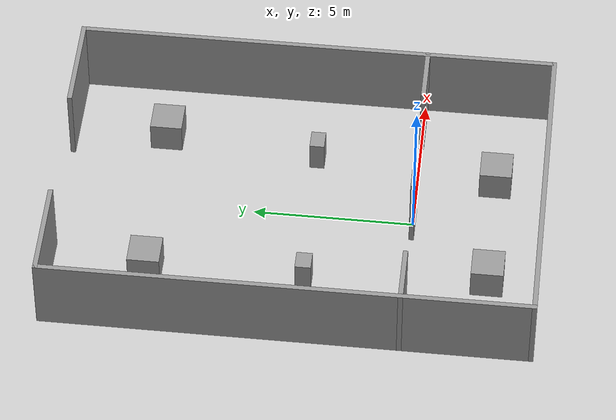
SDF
<sdf version="1.7">
 <world name="default">
  <light name="sun" type="directional">
   <pose>0 0 10 0 -0 0</pose>
   <diffuse>0.8 0.8 0.8 1</diffuse>
   <specular>0.2 0.2 0.2 1</specular>
   <attenuation>
    <range>1000</range>
    <constant>0.9</constant>
    <linear>0.01</linear>
    <quadratic>0.001</quadratic>
   </attenuation>
   <direction>-0.5 0.1 -0.9</direction>
   <spot><inner_angle>0</inner_angle><outer_angle>0</outer_angle><falloff>0</falloff></spot>
  </light>
  <model name="ground_plane">
   <static>1</static>
   <link name="link">
    <collision name="collision">
     <geometry><plane><normal>0 0 1</normal><size>100 100</size></plane></geometry>
     <surface>
      <contact><collide_bitmask>65535</collide_bitmask></contact>
      <friction><ode><mu>100</mu><mu2>50</mu2></ode></friction>
     </surface>
    </collision>
    <visual name="visual">
     <cast_shadows>0</cast_shadows>
     <geometry><plane><normal>0 0 1</normal><size>100 100</size></plane></geometry>
     <material>
      <script><uri>file://media/materials/scripts/gazebo.material</uri><name>Gazebo/Grey</name></script>
     </material>
    </visual>
   </link>
  </model>
  <gravity>0 0 -9.8</gravity>
  <magnetic_field>6e-06 2.3e-05 -4.2e-05</magnetic_field>
  <atmosphere type="adiabatic"/>
  <physics name="default_physics" default="0" type="ode">
   <max_step_size>0.001</max_step_size>
   <real_time_factor>1</real_time_factor>
   <real_time_update_rate>1000</real_time_update_rate>
  </physics>
  <scene><ambient>0.4 0.4 0.4 1</ambient><background>0.7 0.7 0.7 1</background><shadows>1</shadows></scene>
  <audio><device>default</device></audio>
  <spherical_coordinates>
   <surface_model>EARTH_WGS84</surface_model>
   <latitude_deg>0</latitude_deg>
   <longitude_deg>0</longitude_deg>
   <elevation>0</elevation>
   <heading_deg>0</heading_deg>
  </spherical_coordinates>
  <model name="unit_box">
   <pose>2.86632 8.06138 0.499995 1e-05 -0 0</pose>
   <link name="link">
    <inertial>
     <mass>1</mass>
     <inertia>
      <ixx>0.166667</ixx>
      <ixy>0</ixy>
      <ixz>0</ixz>
      <iyy>0.166667</iyy>
      <iyz>0</iyz>
      <izz>0.166667</izz>
     </inertia>
    </inertial>
    <collision name="collision"><geometry><box><size>1 1 1</size></box></geometry></collision>
    <visual name="visual">
     <geometry><box><size>1 1 1</size></box></geometry>
     <material>
      <script><name>Gazebo/Grey</name><uri>file://media/materials/scripts/gazebo.material</uri></script>
     </material>
    </visual>
   </link>
  </model>
  <model name="unit_box_0">
   <pose>-2.69584 8.04153 0.499995 1e-05 -0 0</pose>
   <link name="link">
    <inertial>
     <mass>1</mass>
     <inertia>
      <ixx>0.166667</ixx>
      <ixy>0</ixy>
      <ixz>0</ixz>
      <iyy>0.166667</iyy>
      <iyz>0</iyz>
      <izz>0.166667</izz>
     </inertia>
    </inertial>
    <collision name="collision"><geometry><box><size>1 1 1</size></box></geometry></collision>
    <visual name="visual">
     <geometry><box><size>1 1 1</size></box></geometry>
     <material>
      <script><name>Gazebo/Grey</name><uri>file://media/materials/scripts/gazebo.material</uri></script>
     </material>
    </visual>
   </link>
  </model>
  <model name="unit_box_1">
   <pose>1.89831 -2.45446 0.499995 0 1e-05 0</pose>
   <link name="link">
    <inertial>
     <mass>1</mass>
     <inertia>
      <ixx>0.166667</ixx>
      <ixy>0</ixy>
      <ixz>0</ixz>
      <iyy>0.166667</iyy>
      <iyz>0</iyz>
      <izz>0.166667</izz>
     </inertia>
    </inertial>
    <collision name="collision"><geometry><box><size>1 1 1</size></box></geometry></collision>
    <visual name="visual">
     <geometry><box><size>1 1 1</size></box></geometry>
     <material>
      <script><name>Gazebo/Grey</name><uri>file://media/materials/scripts/gazebo.material</uri></script>
     </material>
    </visual>
   </link>
  </model>
  <model name="unit_box_2">
   <pose>-2.1433 -2.4721 0.499995 0 1e-05 0</pose>
   <link name="link">
    <inertial>
     <mass>1</mass>
     <inertia>
      <ixx>0.166667</ixx>
      <ixy>0</ixy>
      <ixz>0</ixz>
      <iyy>0.166667</iyy>
      <iyz>0</iyz>
      <izz>0.166667</izz>
     </inertia>
    </inertial>
    <collision name="collision"><geometry><box><size>1 1 1</size></box></geometry></collision>
    <visual name="visual">
     <geometry><box><size>1 1 1</size></box></geometry>
     <material>
      <script><name>Gazebo/Grey</name><uri>file://media/materials/scripts/gazebo.material</uri></script>
     </material>
    </visual>
   </link>
  </model>
  <model name="unit_box_3">
   <pose>2.375 3.22628 0.500001 0 2e-06 -0.000732</pose>
   <link name="link">
    <inertial>
     <mass>1</mass>
     <inertia>
      <ixx>0.166667</ixx>
      <ixy>0</ixy>
      <ixz>0</ixz>
      <iyy>0.166667</iyy>
      <iyz>0</iyz>
      <izz>0.166667</izz>
     </inertia>
    </inertial>
    <collision name="collision"><geometry><box><size>0.615533 0.459855 1</size></box></geometry></collision>
    <visual name="visual">
     <geometry><box><size>0.615533 0.459855 1</size></box></geometry>
     <material>
      <script><name>Gazebo/Grey</name><uri>file://media/materials/scripts/gazebo.material</uri></script>
     </material>
    </visual>
   </link>
  </model>
  <model name="unit_box_4">
   <pose>-2.64332 3.14822 0.500001 0 -2e-06 0.000222</pose>
   <link name="link">
    <inertial>
     <mass>1</mass>
     <inertia>
      <ixx>0.166667</ixx>
      <ixy>0</ixy>
      <ixz>0</ixz>
      <iyy>0.166667</iyy>
      <iyz>0</iyz>
      <izz>0.166667</izz>
     </inertia>
    </inertial>
    <collision name="collision"><geometry><box><size>0.593679 0.497237 1</size></box></geometry></collision>
    <visual name="visual">
     <geometry><box><size>0.593679 0.497237 1</size></box></geometry>
     <material>
      <script><name>Gazebo/Grey</name><uri>file://media/materials/scripts/gazebo.material</uri></script>
     </material>
    </visual>
   </link>
  </model>
  <model name="service_wall1">
   <link name="Wall_10">
    <pose>-3.5 10.5 0 0 -0 0</pose>
    <visual name="Wall_10_Visual">
     <pose>0 0 1.25 0 -0 0</pose>
     <geometry><box><size>3.15 0.15 2.5</size></box></geometry>
     <material>
      <script><uri>file://media/materials/scripts/gazebo.material</uri><name>Gazebo/Grey</name></script>
      <ambient>1 1 1 1</ambient>
     </material>
     <meta><layer>0</layer></meta>
    </visual>
    <collision name="Wall_10_Collision">
     <pose>0 0 1.25 0 -0 0</pose>
     <geometry><box><size>3.15 0.15 2.5</size></box></geometry>
     <surface>
      <friction>
       <ode><mu>1</mu><mu2>1</mu2><fdir1>0 0 0</fdir1><slip1>0</slip1><slip2>0</slip2></ode>
       <torsional>
        <coefficient>1</coefficient>
        <patch_radius>0</patch_radius>
        <surface_radius>0</surface_radius>
        <use_patch_radius>1</use_patch_radius>
        <ode><slip>0</slip></ode>
       </torsional>
      </friction>
      <bounce><restitution_coefficient>0</restitution_coefficient><threshold>1e+06</threshold></bounce>
      <contact>
       <collide_without_contact>0</collide_without_contact>
       <collide_without_contact_bitmask>1</collide_without_contact_bitmask>
       <collide_bitmask>1</collide_bitmask>
       <ode>
        <soft_cfm>0</soft_cfm>
        <soft_erp>0.2</soft_erp>
        <kp>1e+13</kp>
        <kd>1</kd>
        <max_vel>0.01</max_vel>
        <min_depth>0</min_depth>
       </ode>
       <bullet>
        <split_impulse>1</split_impulse>
        <split_impulse_penetration_threshold>-0.01</split_impulse_penetration_threshold>
        <soft_cfm>0</soft_cfm>
        <soft_erp>0.2</soft_erp>
        <kp>1e+13</kp>
        <kd>1</kd>
       </bullet>
      </contact>
     </surface>
    </collision>
   </link>
   <link name="Wall_12">
    <pose>3.5 10.5 0 0 -0 3.14159</pose>
    <visual name="Wall_12_Visual">
     <pose>0 0 1.25 0 -0 0</pose>
     <geometry><box><size>3.15 0.15 2.5</size></box></geometry>
     <material>
      <script><uri>file://media/materials/scripts/gazebo.material</uri><name>Gazebo/Grey</name></script>
      <ambient>1 1 1 1</ambient>
     </material>
     <meta><layer>0</layer></meta>
    </visual>
    <collision name="Wall_12_Collision">
     <pose>0 0 1.25 0 -0 0</pose>
     <geometry><box><size>3.15 0.15 2.5</size></box></geometry>
     <surface>
      <friction>
       <ode><mu>1</mu><mu2>1</mu2><fdir1>0 0 0</fdir1><slip1>0</slip1><slip2>0</slip2></ode>
       <torsional>
        <coefficient>1</coefficient>
        <patch_radius>0</patch_radius>
        <surface_radius>0</surface_radius>
        <use_patch_radius>1</use_patch_radius>
        <ode><slip>0</slip></ode>
       </torsional>
      </friction>
      <bounce><restitution_coefficient>0</restitution_coefficient><threshold>1e+06</threshold></bounce>
      <contact>
       <collide_without_contact>0</collide_without_contact>
       <collide_without_contact_bitmask>1</collide_without_contact_bitmask>
       <collide_bitmask>1</collide_bitmask>
       <ode>
        <soft_cfm>0</soft_cfm>
        <soft_erp>0.2</soft_erp>
        <kp>1e+13</kp>
        <kd>1</kd>
        <max_vel>0.01</max_vel>
        <min_depth>0</min_depth>
       </ode>
       <bullet>
        <split_impulse>1</split_impulse>
        <split_impulse_penetration_threshold>-0.01</split_impulse_penetration_threshold>
        <soft_cfm>0</soft_cfm>
        <soft_erp>0.2</soft_erp>
        <kp>1e+13</kp>
        <kd>1</kd>
       </bullet>
      </contact>
     </surface>
    </collision>
   </link>
   <link name="Wall_5">
    <pose>0 -0.5 0 0 -0 0</pose>
    <visual name="Wall_5_Visual_1">
     <pose>-0.046194 0 1.25 0 -0 0</pose>
     <geometry><box><size>1.15643 0.15 2.5</size></box></geometry>
     <material>
      <script><uri>file://media/materials/scripts/gazebo.material</uri><name>Gazebo/Grey</name></script>
      <ambient>1 1 1 1</ambient>
     </material>
     <meta><layer>0</layer></meta>
    </visual>
    <visual name="Wall_5_Visual_2">
     <pose>4.13351 0 1.25 0 -0 0</pose>
     <geometry><box><size>1.88298 0.15 2.5</size></box></geometry>
     <material>
      <script><uri>file://media/materials/scripts/gazebo.material</uri><name>Gazebo/Grey</name></script>
      <ambient>1 1 1 1</ambient>
     </material>
     <meta><layer>0</layer></meta>
    </visual>
    <visual name="Wall_5_Visual_0">
     <pose>-4.15194 0 1.25 0 -0 0</pose>
     <geometry><box><size>1.84612 0.15 2.5</size></box></geometry>
     <material>
      <script><uri>file://media/materials/scripts/gazebo.material</uri><name>Gazebo/Grey</name></script>
      <ambient>1 1 1 1</ambient>
     </material>
     <meta><layer>0</layer></meta>
    </visual>
    <collision name="Wall_5_Collision_0">
     <pose>-4.15194 0 1.25 0 -0 0</pose>
     <geometry><box><size>1.84612 0.15 2.5</size></box></geometry>
     <surface>
      <friction>
       <ode><mu>1</mu><mu2>1</mu2><fdir1>0 0 0</fdir1><slip1>0</slip1><slip2>0</slip2></ode>
       <torsional>
        <coefficient>1</coefficient>
        <patch_radius>0</patch_radius>
        <surface_radius>0</surface_radius>
        <use_patch_radius>1</use_patch_radius>
        <ode><slip>0</slip></ode>
       </torsional>
      </friction>
      <bounce><restitution_coefficient>0</restitution_coefficient><threshold>1e+06</threshold></bounce>
      <contact>
       <collide_without_contact>0</collide_without_contact>
       <collide_without_contact_bitmask>1</collide_without_contact_bitmask>
       <collide_bitmask>1</collide_bitmask>
       <ode>
        <soft_cfm>0</soft_cfm>
        <soft_erp>0.2</soft_erp>
        <kp>1e+13</kp>
        <kd>1</kd>
        <max_vel>0.01</max_vel>
        <min_depth>0</min_depth>
       </ode>
       <bullet>
        <split_impulse>1</split_impulse>
        <split_impulse_penetration_threshold>-0.01</split_impulse_penetration_threshold>
        <soft_cfm>0</soft_cfm>
        <soft_erp>0.2</soft_erp>
        <kp>1e+13</kp>
        <kd>1</kd>
       </bullet>
      </contact>
     </surface>
    </collision>
    <collision name="Wall_5_Collision_1">
     <pose>-0.046194 0 1.25 0 -0 0</pose>
     <geometry><box><size>1.15643 0.15 2.5</size></box></geometry>
     <surface>
      <friction>
       <ode><mu>1</mu><mu2>1</mu2><fdir1>0 0 0</fdir1><slip1>0</slip1><slip2>0</slip2></ode>
       <torsional>
        <coefficient>1</coefficient>
        <patch_radius>0</patch_radius>
        <surface_radius>0</surface_radius>
        <use_patch_radius>1</use_patch_radius>
        <ode><slip>0</slip></ode>
       </torsional>
      </friction>
      <bounce><restitution_coefficient>0</restitution_coefficient><threshold>1e+06</threshold></bounce>
      <contact>
       <collide_without_contact>0</collide_without_contact>
       <collide_without_contact_bitmask>1</collide_without_contact_bitmask>
       <collide_bitmask>1</collide_bitmask>
       <ode>
        <soft_cfm>0</soft_cfm>
        <soft_erp>0.2</soft_erp>
        <kp>1e+13</kp>
        <kd>1</kd>
        <max_vel>0.01</max_vel>
        <min_depth>0</min_depth>
       </ode>
       <bullet>
        <split_impulse>1</split_impulse>
        <split_impulse_penetration_threshold>-0.01</split_impulse_penetration_threshold>
        <soft_cfm>0</soft_cfm>
        <soft_erp>0.2</soft_erp>
        <kp>1e+13</kp>
        <kd>1</kd>
       </bullet>
      </contact>
     </surface>
    </collision>
    <collision name="Wall_5_Collision_2">
     <pose>4.13351 0 1.25 0 -0 0</pose>
     <geometry><box><size>1.88298 0.15 2.5</size></box></geometry>
     <surface>
      <friction>
       <ode><mu>1</mu><mu2>1</mu2><fdir1>0 0 0</fdir1><slip1>0</slip1><slip2>0</slip2></ode>
       <torsional>
        <coefficient>1</coefficient>
        <patch_radius>0</patch_radius>
        <surface_radius>0</surface_radius>
        <use_patch_radius>1</use_patch_radius>
        <ode><slip>0</slip></ode>
       </torsional>
      </friction>
      <bounce><restitution_coefficient>0</restitution_coefficient><threshold>1e+06</threshold></bounce>
      <contact>
       <collide_without_contact>0</collide_without_contact>
       <collide_without_contact_bitmask>1</collide_without_contact_bitmask>
       <collide_bitmask>1</collide_bitmask>
       <ode>
        <soft_cfm>0</soft_cfm>
        <soft_erp>0.2</soft_erp>
        <kp>1e+13</kp>
        <kd>1</kd>
        <max_vel>0.01</max_vel>
        <min_depth>0</min_depth>
       </ode>
       <bullet>
        <split_impulse>1</split_impulse>
        <split_impulse_penetration_threshold>-0.01</split_impulse_penetration_threshold>
        <soft_cfm>0</soft_cfm>
        <soft_erp>0.2</soft_erp>
        <kp>1e+13</kp>
        <kd>1</kd>
       </bullet>
      </contact>
     </surface>
    </collision>
   </link>
   <static>1</static>
   <pose>0 0.5 0 0 -0 0</pose>
  </model>
  <model name="service_wall2">
   <pose>0 3.5 0 0 -0 0</pose>
   <link name="Wall_14">
    <collision name="Wall_14_Collision">
     <geometry><box><size>15.15 0.15 2.5</size></box></geometry>
     <pose>0 0 1.25 0 -0 0</pose>
    </collision>
    <visual name="Wall_14_Visual">
     <pose>0 0 1.25 0 -0 0</pose>
     <geometry><box><size>15.15 0.15 2.5</size></box></geometry>
     <material>
      <script><uri>file://media/materials/scripts/gazebo.material</uri><name>Gazebo/Grey</name></script>
      <ambient>1 1 1 1</ambient>
     </material>
     <meta><layer>0</layer></meta>
    </visual>
    <pose>-5 0 0 0 -0 1.5708</pose>
   </link>
   <link name="Wall_16">
    <collision name="Wall_16_Collision">
     <geometry><box><size>15.15 0.15 2.5</size></box></geometry>
     <pose>0 0 1.25 0 -0 0</pose>
    </collision>
    <visual name="Wall_16_Visual">
     <pose>0 0 1.25 0 -0 0</pose>
     <geometry><box><size>15.15 0.15 2.5</size></box></geometry>
     <material>
      <script><uri>file://media/materials/scripts/gazebo.material</uri><name>Gazebo/Grey</name></script>
      <ambient>1 1 1 1</ambient>
     </material>
     <meta><layer>0</layer></meta>
    </visual>
    <pose>5 0 0 0 -0 1.5708</pose>
   </link>
   <static>1</static>
  </model>
  <model name="service_wall3">
   <pose>0 -4 0 0 -0 0</pose>
   <link name="Wall_23">
    <collision name="Wall_23_Collision">
     <geometry><box><size>10.15 0.15 2.5</size></box></geometry>
     <pose>0 0 1.25 0 -0 0</pose>
    </collision>
    <visual name="Wall_23_Visual">
     <pose>0 0 1.25 0 -0 0</pose>
     <geometry><box><size>10.15 0.15 2.5</size></box></geometry>
     <material>
      <script><uri>file://media/materials/scripts/gazebo.material</uri><name>Gazebo/Grey</name></script>
      <ambient>1 1 1 1</ambient>
     </material>
     <meta><layer>0</layer></meta>
    </visual>
    <pose>0 -0 0 0 -0 3.14159</pose>
   </link>
   <static>1</static>
  </model>
  <light name="user_point_light_0" type="point">
   <pose>2.48651 6.24058 1 0 -0 0</pose>
   <diffuse>0.5 0.5 0.5 1</diffuse>
   <specular>0.1 0.1 0.1 1</specular>
   <attenuation>
    <range>20</range>
    <constant>0.5</constant>
    <linear>0.01</linear>
    <quadratic>0.001</quadratic>
   </attenuation>
   <cast_shadows>0</cast_shadows>
   <direction>0 0 -1</direction>
  </light>
  <light name="user_point_light_1" type="point">
   <pose>-2.57664 6.34571 1 0 -0 0</pose>
   <diffuse>0.5 0.5 0.5 1</diffuse>
   <specular>0.1 0.1 0.1 1</specular>
   <attenuation>
    <range>20</range>
    <constant>0.5</constant>
    <linear>0.01</linear>
    <quadratic>0.001</quadratic>
   </attenuation>
   <cast_shadows>0</cast_shadows>
   <direction>0 0 -1</direction>
  </light>
 </world>
</sdf>
